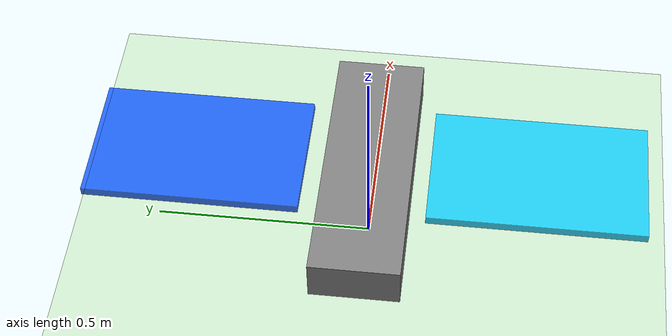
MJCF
<mujoco model="v22_drone">
    <option gravity="0 0 -9.81" timestep="0.002"/>

    <worldbody>
        <light directional="true" diffuse=".8 .8 .8" specular=".2 .2 .2" pos="0 0 5" dir="0 0 -1"/>
        <geom name="floor" type="plane" size="10 10 .1" rgba=".8 .9 .8 1"/>

        <body name="v22_body" pos="0 0 0.2">
            <freejoint name="root"/>
            <geom name="fuselage" type="box" size="0.3 0.1 0.05" rgba="0.5 0.5 0.5 1" density="100"/>

            <body name="left_flap_assembly" pos="0 0.38 0.05">
                <joint name="left_flap_joint" type="hinge" axis="0 1 0" range="-1.57 1.57" limited="true"/>
                <geom name="left_wing_geom" type="box" size="0.15 0.24 0.01" rgba="0 0.3 1 0.8" density="100"/>
            </body>

            <body name="right_flap_assembly" pos="0 -0.38 0.05">
                <joint name="right_flap_joint" type="hinge" axis="0 1 0" range="-1.57 1.57" limited="true"/>
                <geom name="right_wing_geom" type="box" size="0.15 0.24 0.01" rgba="0 0.8 1 0.8" density="100"/>
            </body>
        </body>
    </worldbody>
</mujoco>
